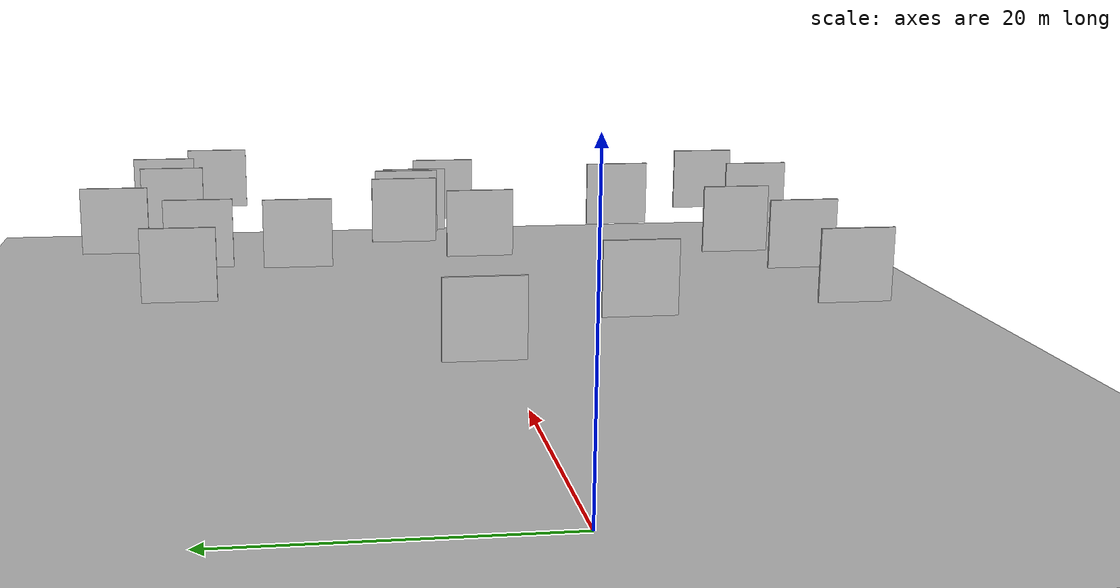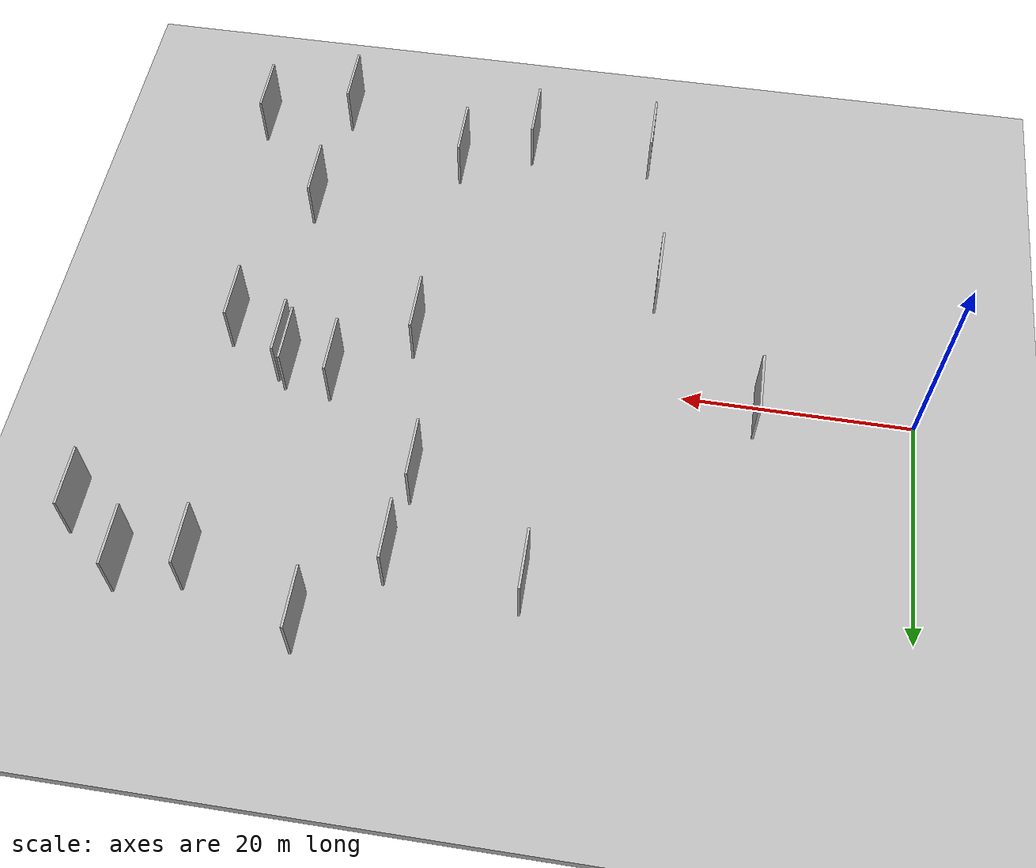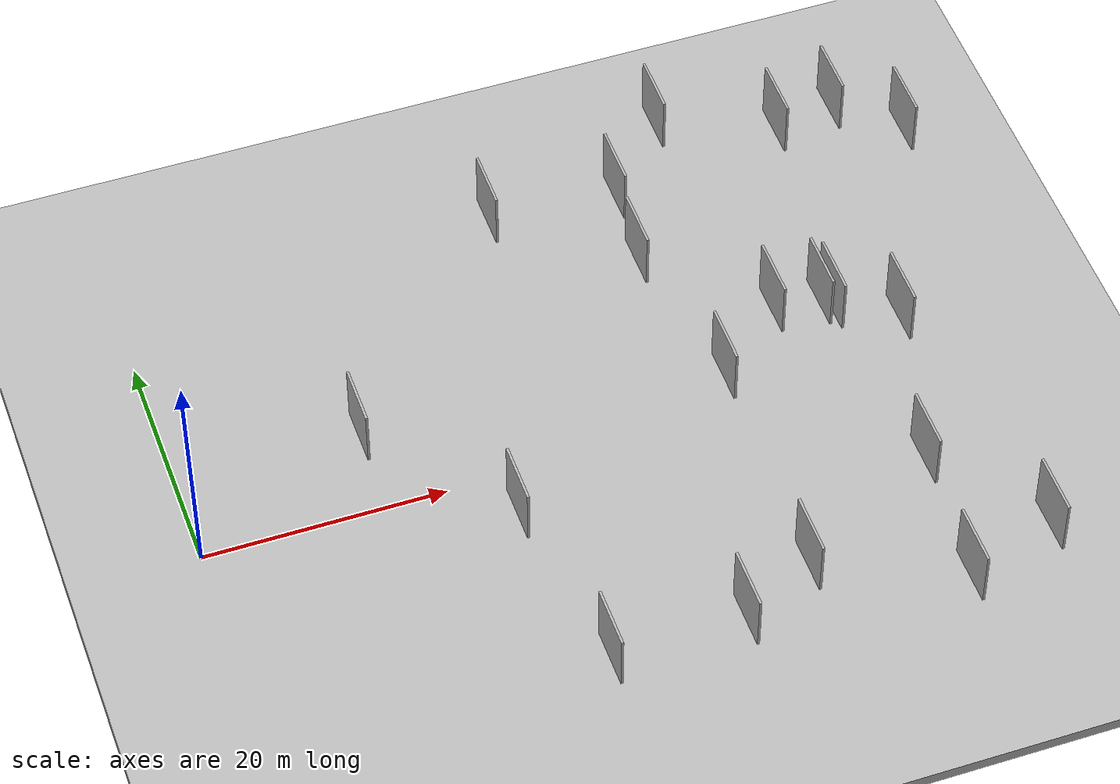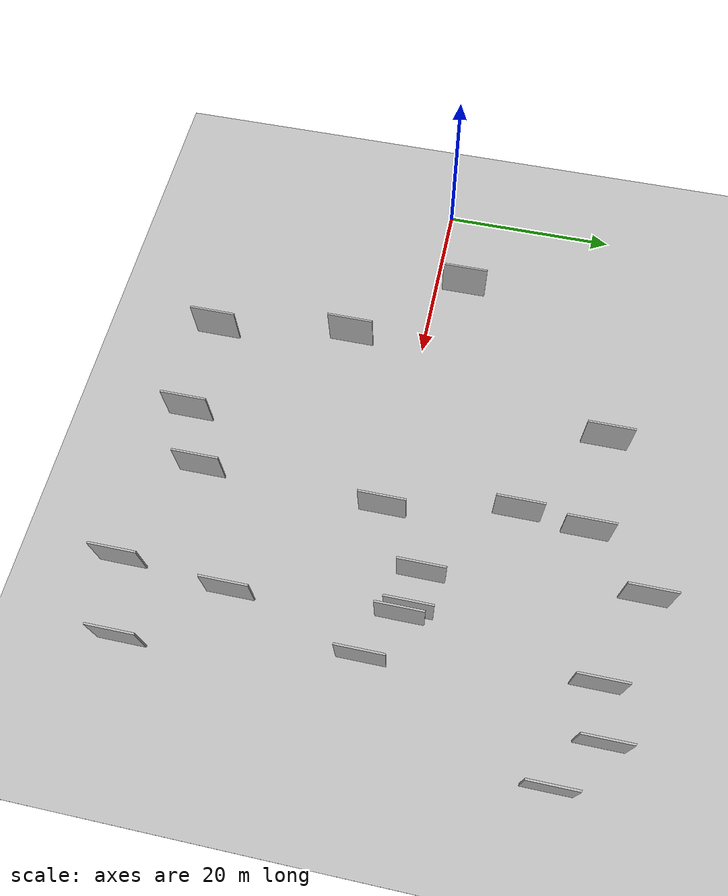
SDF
<?xml version="1.0" encoding="utf-8"?>

<sdf version="1.6">

   <world name="default">

      <gui fullscreen="0">

         <camera name="user_camera">

            <pose>-15 0 4.57585 0 0 0</pose>

            <view_controller>orbit</view_controller>

         </camera>

      </gui>

      <scene>

         <sky>

           <clouds>

             <speed>12</speed>

           </clouds>

         </sky>

         <ambient>0.4 0.4 0.4 1</ambient>

         <background>0.7 0.7 0.7 1</background>

         <shadows>1</shadows>

      </scene>

      <gravity>0 0 -9.8066</gravity>

      <magnetic_field>6e-06 2.3e-05 -4.2e-05</magnetic_field>

      <physics default="0" name="default_physics" type="ode">

         <ode>

            <solver>

               <type>quick</type>

               <iters>10</iters>

               <sor>1.0</sor>

               <use_dynamic_moi_rescaling>0</use_dynamic_moi_rescaling>

            </solver>

            <constraints>

               <cfm>0</cfm>

               <erp>0.2</erp>

               <contact_max_correcting_vel>100</contact_max_correcting_vel>

               <contact_surface_layer>0.001</contact_surface_layer>

            </constraints>

         </ode>

         <max_step_size>0.004</max_step_size>

         <real_time_factor>1</real_time_factor>

         <real_time_update_rate>250</real_time_update_rate>

      </physics>

      <light name="sun" type="directional">

         <cast_shadows>1</cast_shadows>

         <pose>0 0 10 0 0 0</pose>

         <diffuse>0.8 0.8 0.8 1</diffuse>

         <specular>0.2 0.2 0.2 1</specular>

         <attenuation>

            <range>1000</range>

            <constant>0.9</constant>

            <linear>0.01</linear>

            <quadratic>0.001</quadratic>

         </attenuation>

         <direction>-0.5 0.1 -0.9</direction>

      </light>

      <include>

         <name>ground_plane_1</name>

         <uri>model://HANNAS_ground_plane</uri>

         <pose>0 0 0  0 0 0</pose>

      </include>

      <include>

         <name>ground_plane_2</name>

         <uri>model://HANNAS_ground_plane</uri>

         <pose>100 0 0  0 0 0</pose>

      </include>

      <model name="HANNAS_wall_1">

         <static>1</static>

         <pose frame="">14.1617 3.6028 5.0 0.000000 0.000000 1.570796</pose>

         <link name="link">

            <pose frame="">0 0 2.50 0 0 0</pose>

            <collision name="collision">

               <geometry>

                  <box>

                     <size>5.00 0.2 5.00</size>

                  </box>

               </geometry>

               <max_contacts>10</max_contacts>

               <surface>

                  <contact>

                     <ode/>

                  </contact>

                  <bounce/>

                  <friction>

                     <torsional>

                        <ode/>

                     </torsional>

                     <ode/>

                  </friction>

               </surface>

            </collision>

            <visual name="visual">

               <cast_shadows>0</cast_shadows>

               <geometry>

                  <box>

                     <size>5.00 0.2 5.00</size>

                  </box>

               </geometry>

               <material>

                  <script>

                     <uri>model://HANNAS_wall/materials/scripts</uri>

                     <uri>model://HANNAS_wall/materials/textures</uri>

                     <name>vrc/HANNAS_wall</name>

                  </script>

               </material>

            </visual>

            <self_collide>0</self_collide>

            <enable_wind>0</enable_wind>

            <kinematic>0</kinematic>

         </link>

      </model>

      <model name="HANNAS_wall_2">

         <static>1</static>

         <pose frame="">41.3663 20.9737 5.0 0.000000 0.000000 1.570796</pose>

         <link name="link">

            <pose frame="">0 0 2.50 0 0 0</pose>

            <collision name="collision">

               <geometry>

                  <box>

                     <size>5.00 0.2 5.00</size>

                  </box>

               </geometry>

               <max_contacts>10</max_contacts>

               <surface>

                  <contact>

                     <ode/>

                  </contact>

                  <bounce/>

                  <friction>

                     <torsional>

                        <ode/>

                     </torsional>

                     <ode/>

                  </friction>

               </surface>

            </collision>

            <visual name="visual">

               <cast_shadows>0</cast_shadows>

               <geometry>

                  <box>

                     <size>5.00 0.2 5.00</size>

                  </box>

               </geometry>

               <material>

                  <script>

                     <uri>model://HANNAS_wall/materials/scripts</uri>

                     <uri>model://HANNAS_wall/materials/textures</uri>

                     <name>vrc/HANNAS_wall</name>

                  </script>

               </material>

            </visual>

            <self_collide>0</self_collide>

            <enable_wind>0</enable_wind>

            <kinematic>0</kinematic>

         </link>

      </model>

      <model name="HANNAS_wall_3">

         <static>1</static>

         <pose frame="">43.0630 0.0927 5.0 0.000000 0.000000 1.570796</pose>

         <link name="link">

            <pose frame="">0 0 2.50 0 0 0</pose>

            <collision name="collision">

               <geometry>

                  <box>

                     <size>5.00 0.2 5.00</size>

                  </box>

               </geometry>

               <max_contacts>10</max_contacts>

               <surface>

                  <contact>

                     <ode/>

                  </contact>

                  <bounce/>

                  <friction>

                     <torsional>

                        <ode/>

                     </torsional>

                     <ode/>

                  </friction>

               </surface>

            </collision>

            <visual name="visual">

               <cast_shadows>0</cast_shadows>

               <geometry>

                  <box>

                     <size>5.00 0.2 5.00</size>

                  </box>

               </geometry>

               <material>

                  <script>

                     <uri>model://HANNAS_wall/materials/scripts</uri>

                     <uri>model://HANNAS_wall/materials/textures</uri>

                     <name>vrc/HANNAS_wall</name>

                  </script>

               </material>

            </visual>

            <self_collide>0</self_collide>

            <enable_wind>0</enable_wind>

            <kinematic>0</kinematic>

         </link>

      </model>

      <model name="HANNAS_wall_4">

         <static>1</static>

         <pose frame="">23.3538 -7.6842 5.0 0.000000 0.000000 1.570796</pose>

         <link name="link">

            <pose frame="">0 0 2.50 0 0 0</pose>

            <collision name="collision">

               <geometry>

                  <box>

                     <size>5.00 0.2 5.00</size>

                  </box>

               </geometry>

               <max_contacts>10</max_contacts>

               <surface>

                  <contact>

                     <ode/>

                  </contact>

                  <bounce/>

                  <friction>

                     <torsional>

                        <ode/>

                     </torsional>

                     <ode/>

                  </friction>

               </surface>

            </collision>

            <visual name="visual">

               <cast_shadows>0</cast_shadows>

               <geometry>

                  <box>

                     <size>5.00 0.2 5.00</size>

                  </box>

               </geometry>

               <material>

                  <script>

                     <uri>model://HANNAS_wall/materials/scripts</uri>

                     <uri>model://HANNAS_wall/materials/textures</uri>

                     <name>vrc/HANNAS_wall</name>

                  </script>

               </material>

            </visual>

            <self_collide>0</self_collide>

            <enable_wind>0</enable_wind>

            <kinematic>0</kinematic>

         </link>

      </model>

      <model name="HANNAS_wall_5">

         <static>1</static>

         <pose frame="">58.4165 1.2532 5.0 0.000000 0.000000 1.570796</pose>

         <link name="link">

            <pose frame="">0 0 2.50 0 0 0</pose>

            <collision name="collision">

               <geometry>

                  <box>

                     <size>5.00 0.2 5.00</size>

                  </box>

               </geometry>

               <max_contacts>10</max_contacts>

               <surface>

                  <contact>

                     <ode/>

                  </contact>

                  <bounce/>

                  <friction>

                     <torsional>

                        <ode/>

                     </torsional>

                     <ode/>

                  </friction>

               </surface>

            </collision>

            <visual name="visual">

               <cast_shadows>0</cast_shadows>

               <geometry>

                  <box>

                     <size>5.00 0.2 5.00</size>

                  </box>

               </geometry>

               <material>

                  <script>

                     <uri>model://HANNAS_wall/materials/scripts</uri>

                     <uri>model://HANNAS_wall/materials/textures</uri>

                     <name>vrc/HANNAS_wall</name>

                  </script>

               </material>

            </visual>

            <self_collide>0</self_collide>

            <enable_wind>0</enable_wind>

            <kinematic>0</kinematic>

         </link>

      </model>

      <model name="HANNAS_wall_6">

         <static>1</static>

         <pose frame="">40.6929 13.7889 5.0 0.000000 0.000000 1.570796</pose>

         <link name="link">

            <pose frame="">0 0 2.50 0 0 0</pose>

            <collision name="collision">

               <geometry>

                  <box>

                     <size>5.00 0.2 5.00</size>

                  </box>

               </geometry>

               <max_contacts>10</max_contacts>

               <surface>

                  <contact>

                     <ode/>

                  </contact>

                  <bounce/>

                  <friction>

                     <torsional>

                        <ode/>

                     </torsional>

                     <ode/>

                  </friction>

               </surface>

            </collision>

            <visual name="visual">

               <cast_shadows>0</cast_shadows>

               <geometry>

                  <box>

                     <size>5.00 0.2 5.00</size>

                  </box>

               </geometry>

               <material>

                  <script>

                     <uri>model://HANNAS_wall/materials/scripts</uri>

                     <uri>model://HANNAS_wall/materials/textures</uri>

                     <name>vrc/HANNAS_wall</name>

                  </script>

               </material>

            </visual>

            <self_collide>0</self_collide>

            <enable_wind>0</enable_wind>

            <kinematic>0</kinematic>

         </link>

      </model>

      <model name="HANNAS_wall_7">

         <static>1</static>

         <pose frame="">47.1019 27.4755 5.0 0.000000 0.000000 1.570796</pose>

         <link name="link">

            <pose frame="">0 0 2.50 0 0 0</pose>

            <collision name="collision">

               <geometry>

                  <box>

                     <size>5.00 0.2 5.00</size>

                  </box>

               </geometry>

               <max_contacts>10</max_contacts>

               <surface>

                  <contact>

                     <ode/>

                  </contact>

                  <bounce/>

                  <friction>

                     <torsional>

                        <ode/>

                     </torsional>

                     <ode/>

                  </friction>

               </surface>

            </collision>

            <visual name="visual">

               <cast_shadows>0</cast_shadows>

               <geometry>

                  <box>

                     <size>5.00 0.2 5.00</size>

                  </box>

               </geometry>

               <material>

                  <script>

                     <uri>model://HANNAS_wall/materials/scripts</uri>

                     <uri>model://HANNAS_wall/materials/textures</uri>

                     <name>vrc/HANNAS_wall</name>

                  </script>

               </material>

            </visual>

            <self_collide>0</self_collide>

            <enable_wind>0</enable_wind>

            <kinematic>0</kinematic>

         </link>

      </model>

      <model name="HANNAS_wall_8">

         <static>1</static>

         <pose frame="">49.0996 5.3220 5.0 0.000000 0.000000 1.570796</pose>

         <link name="link">

            <pose frame="">0 0 2.50 0 0 0</pose>

            <collision name="collision">

               <geometry>

                  <box>

                     <size>5.00 0.2 5.00</size>

                  </box>

               </geometry>

               <max_contacts>10</max_contacts>

               <surface>

                  <contact>

                     <ode/>

                  </contact>

                  <bounce/>

                  <friction>

                     <torsional>

                        <ode/>

                     </torsional>

                     <ode/>

                  </friction>

               </surface>

            </collision>

            <visual name="visual">

               <cast_shadows>0</cast_shadows>

               <geometry>

                  <box>

                     <size>5.00 0.2 5.00</size>

                  </box>

               </geometry>

               <material>

                  <script>

                     <uri>model://HANNAS_wall/materials/scripts</uri>

                     <uri>model://HANNAS_wall/materials/textures</uri>

                     <name>vrc/HANNAS_wall</name>

                  </script>

               </material>

            </visual>

            <self_collide>0</self_collide>

            <enable_wind>0</enable_wind>

            <kinematic>0</kinematic>

         </link>

      </model>

      <model name="HANNAS_wall_9">

         <static>1</static>

         <pose frame="">53.7305 4.0978 5.0 0.000000 0.000000 1.570796</pose>

         <link name="link">

            <pose frame="">0 0 2.50 0 0 0</pose>

            <collision name="collision">

               <geometry>

                  <box>

                     <size>5.00 0.2 5.00</size>

                  </box>

               </geometry>

               <max_contacts>10</max_contacts>

               <surface>

                  <contact>

                     <ode/>

                  </contact>

                  <bounce/>

                  <friction>

                     <torsional>

                        <ode/>

                     </torsional>

                     <ode/>

                  </friction>

               </surface>

            </collision>

            <visual name="visual">

               <cast_shadows>0</cast_shadows>

               <geometry>

                  <box>

                     <size>5.00 0.2 5.00</size>

                  </box>

               </geometry>

               <material>

                  <script>

                     <uri>model://HANNAS_wall/materials/scripts</uri>

                     <uri>model://HANNAS_wall/materials/textures</uri>

                     <name>vrc/HANNAS_wall</name>

                  </script>

               </material>

            </visual>

            <self_collide>0</self_collide>

            <enable_wind>0</enable_wind>

            <kinematic>0</kinematic>

         </link>

      </model>

      <model name="HANNAS_wall_10">

         <static>1</static>

         <pose frame="">56.4729 23.7045 5.0 0.000000 0.000000 1.570796</pose>

         <link name="link">

            <pose frame="">0 0 2.50 0 0 0</pose>

            <collision name="collision">

               <geometry>

                  <box>

                     <size>5.00 0.2 5.00</size>

                  </box>

               </geometry>

               <max_contacts>10</max_contacts>

               <surface>

                  <contact>

                     <ode/>

                  </contact>

                  <bounce/>

                  <friction>

                     <torsional>

                        <ode/>

                     </torsional>

                     <ode/>

                  </friction>

               </surface>

            </collision>

            <visual name="visual">

               <cast_shadows>0</cast_shadows>

               <geometry>

                  <box>

                     <size>5.00 0.2 5.00</size>

                  </box>

               </geometry>

               <material>

                  <script>

                     <uri>model://HANNAS_wall/materials/scripts</uri>

                     <uri>model://HANNAS_wall/materials/textures</uri>

                     <name>vrc/HANNAS_wall</name>

                  </script>

               </material>

            </visual>

            <self_collide>0</self_collide>

            <enable_wind>0</enable_wind>

            <kinematic>0</kinematic>

         </link>

      </model>

      <model name="HANNAS_wall_11">

         <static>1</static>

         <pose frame="">54.6732 -12.9113 5.0 0.000000 0.000000 1.570796</pose>

         <link name="link">

            <pose frame="">0 0 2.50 0 0 0</pose>

            <collision name="collision">

               <geometry>

                  <box>

                     <size>5.00 0.2 5.00</size>

                  </box>

               </geometry>

               <max_contacts>10</max_contacts>

               <surface>

                  <contact>

                     <ode/>

                  </contact>

                  <bounce/>

                  <friction>

                     <torsional>

                        <ode/>

                     </torsional>

                     <ode/>

                  </friction>

               </surface>

            </collision>

            <visual name="visual">

               <cast_shadows>0</cast_shadows>

               <geometry>

                  <box>

                     <size>5.00 0.2 5.00</size>

                  </box>

               </geometry>

               <material>

                  <script>

                     <uri>model://HANNAS_wall/materials/scripts</uri>

                     <uri>model://HANNAS_wall/materials/textures</uri>

                     <name>vrc/HANNAS_wall</name>

                  </script>

               </material>

            </visual>

            <self_collide>0</self_collide>

            <enable_wind>0</enable_wind>

            <kinematic>0</kinematic>

         </link>

      </model>

      <model name="HANNAS_wall_12">

         <static>1</static>

         <pose frame="">66.4869 20.3504 5.0 0.000000 0.000000 1.570796</pose>

         <link name="link">

            <pose frame="">0 0 2.50 0 0 0</pose>

            <collision name="collision">

               <geometry>

                  <box>

                     <size>5.00 0.2 5.00</size>

                  </box>

               </geometry>

               <max_contacts>10</max_contacts>

               <surface>

                  <contact>

                     <ode/>

                  </contact>

                  <bounce/>

                  <friction>

                     <torsional>

                        <ode/>

                     </torsional>

                     <ode/>

                  </friction>

               </surface>

            </collision>

            <visual name="visual">

               <cast_shadows>0</cast_shadows>

               <geometry>

                  <box>

                     <size>5.00 0.2 5.00</size>

                  </box>

               </geometry>

               <material>

                  <script>

                     <uri>model://HANNAS_wall/materials/scripts</uri>

                     <uri>model://HANNAS_wall/materials/textures</uri>

                     <name>vrc/HANNAS_wall</name>

                  </script>

               </material>

            </visual>

            <self_collide>0</self_collide>

            <enable_wind>0</enable_wind>

            <kinematic>0</kinematic>

         </link>

      </model>

      <model name="HANNAS_wall_13">

         <static>1</static>

         <pose frame="">42.4790 -19.5198 5.0 0.000000 0.000000 1.570796</pose>

         <link name="link">

            <pose frame="">0 0 2.50 0 0 0</pose>

            <collision name="collision">

               <geometry>

                  <box>

                     <size>5.00 0.2 5.00</size>

                  </box>

               </geometry>

               <max_contacts>10</max_contacts>

               <surface>

                  <contact>

                     <ode/>

                  </contact>

                  <bounce/>

                  <friction>

                     <torsional>

                        <ode/>

                     </torsional>

                     <ode/>

                  </friction>

               </surface>

            </collision>

            <visual name="visual">

               <cast_shadows>0</cast_shadows>

               <geometry>

                  <box>

                     <size>5.00 0.2 5.00</size>

                  </box>

               </geometry>

               <material>

                  <script>

                     <uri>model://HANNAS_wall/materials/scripts</uri>

                     <uri>model://HANNAS_wall/materials/textures</uri>

                     <name>vrc/HANNAS_wall</name>

                  </script>

               </material>

            </visual>

            <self_collide>0</self_collide>

            <enable_wind>0</enable_wind>

            <kinematic>0</kinematic>

         </link>

      </model>

      <model name="HANNAS_wall_14">

         <static>1</static>

         <pose frame="">52.9929 4.8207 5.0 0.000000 0.000000 1.570796</pose>

         <link name="link">

            <pose frame="">0 0 2.50 0 0 0</pose>

            <collision name="collision">

               <geometry>

                  <box>

                     <size>5.00 0.2 5.00</size>

                  </box>

               </geometry>

               <max_contacts>10</max_contacts>

               <surface>

                  <contact>

                     <ode/>

                  </contact>

                  <bounce/>

                  <friction>

                     <torsional>

                        <ode/>

                     </torsional>

                     <ode/>

                  </friction>

               </surface>

            </collision>

            <visual name="visual">

               <cast_shadows>0</cast_shadows>

               <geometry>

                  <box>

                     <size>5.00 0.2 5.00</size>

                  </box>

               </geometry>

               <material>

                  <script>

                     <uri>model://HANNAS_wall/materials/scripts</uri>

                     <uri>model://HANNAS_wall/materials/textures</uri>

                     <name>vrc/HANNAS_wall</name>

                  </script>

               </material>

            </visual>

            <self_collide>0</self_collide>

            <enable_wind>0</enable_wind>

            <kinematic>0</kinematic>

         </link>

      </model>

      <model name="HANNAS_wall_15">

         <static>1</static>

         <pose frame="">53.6625 -24.4670 5.0 0.000000 0.000000 1.570796</pose>

         <link name="link">

            <pose frame="">0 0 2.50 0 0 0</pose>

            <collision name="collision">

               <geometry>

                  <box>

                     <size>5.00 0.2 5.00</size>

                  </box>

               </geometry>

               <max_contacts>10</max_contacts>

               <surface>

                  <contact>

                     <ode/>

                  </contact>

                  <bounce/>

                  <friction>

                     <torsional>

                        <ode/>

                     </torsional>

                     <ode/>

                  </friction>

               </surface>

            </collision>

            <visual name="visual">

               <cast_shadows>0</cast_shadows>

               <geometry>

                  <box>

                     <size>5.00 0.2 5.00</size>

                  </box>

               </geometry>

               <material>

                  <script>

                     <uri>model://HANNAS_wall/materials/scripts</uri>

                     <uri>model://HANNAS_wall/materials/textures</uri>

                     <name>vrc/HANNAS_wall</name>

                  </script>

               </material>

            </visual>

            <self_collide>0</self_collide>

            <enable_wind>0</enable_wind>

            <kinematic>0</kinematic>

         </link>

      </model>

      <model name="HANNAS_wall_16">

         <static>1</static>

         <pose frame="">30.7013 21.8368 5.0 0.000000 0.000000 1.570796</pose>

         <link name="link">

            <pose frame="">0 0 2.50 0 0 0</pose>

            <collision name="collision">

               <geometry>

                  <box>

                     <size>5.00 0.2 5.00</size>

                  </box>

               </geometry>

               <max_contacts>10</max_contacts>

               <surface>

                  <contact>

                     <ode/>

                  </contact>

                  <bounce/>

                  <friction>

                     <torsional>

                        <ode/>

                     </torsional>

                     <ode/>

                  </friction>

               </surface>

            </collision>

            <visual name="visual">

               <cast_shadows>0</cast_shadows>

               <geometry>

                  <box>

                     <size>5.00 0.2 5.00</size>

                  </box>

               </geometry>

               <material>

                  <script>

                     <uri>model://HANNAS_wall/materials/scripts</uri>

                     <uri>model://HANNAS_wall/materials/textures</uri>

                     <name>vrc/HANNAS_wall</name>

                  </script>

               </material>

            </visual>

            <self_collide>0</self_collide>

            <enable_wind>0</enable_wind>

            <kinematic>0</kinematic>

         </link>

      </model>

      <model name="HANNAS_wall_17">

         <static>1</static>

         <pose frame="">61.7011 24.6337 5.0 0.000000 0.000000 1.570796</pose>

         <link name="link">

            <pose frame="">0 0 2.50 0 0 0</pose>

            <collision name="collision">

               <geometry>

                  <box>

                     <size>5.00 0.2 5.00</size>

                  </box>

               </geometry>

               <max_contacts>10</max_contacts>

               <surface>

                  <contact>

                     <ode/>

                  </contact>

                  <bounce/>

                  <friction>

                     <torsional>

                        <ode/>

                     </torsional>

                     <ode/>

                  </friction>

               </surface>

            </collision>

            <visual name="visual">

               <cast_shadows>0</cast_shadows>

               <geometry>

                  <box>

                     <size>5.00 0.2 5.00</size>

                  </box>

               </geometry>

               <material>

                  <script>

                     <uri>model://HANNAS_wall/materials/scripts</uri>

                     <uri>model://HANNAS_wall/materials/textures</uri>

                     <name>vrc/HANNAS_wall</name>

                  </script>

               </material>

            </visual>

            <self_collide>0</self_collide>

            <enable_wind>0</enable_wind>

            <kinematic>0</kinematic>

         </link>

      </model>

      <model name="HANNAS_wall_18">

         <static>1</static>

         <pose frame="">25.4809 -22.7627 5.0 0.000000 0.000000 1.570796</pose>

         <link name="link">

            <pose frame="">0 0 2.50 0 0 0</pose>

            <collision name="collision">

               <geometry>

                  <box>

                     <size>5.00 0.2 5.00</size>

                  </box>

               </geometry>

               <max_contacts>10</max_contacts>

               <surface>

                  <contact>

                     <ode/>

                  </contact>

                  <bounce/>

                  <friction>

                     <torsional>

                        <ode/>

                     </torsional>

                     <ode/>

                  </friction>

               </surface>

            </collision>

            <visual name="visual">

               <cast_shadows>0</cast_shadows>

               <geometry>

                  <box>

                     <size>5.00 0.2 5.00</size>

                  </box>

               </geometry>

               <material>

                  <script>

                     <uri>model://HANNAS_wall/materials/scripts</uri>

                     <uri>model://HANNAS_wall/materials/textures</uri>

                     <name>vrc/HANNAS_wall</name>

                  </script>

               </material>

            </visual>

            <self_collide>0</self_collide>

            <enable_wind>0</enable_wind>

            <kinematic>0</kinematic>

         </link>

      </model>

      <model name="HANNAS_wall_19">

         <static>1</static>

         <pose frame="">36.2504 -22.7262 5.0 0.000000 0.000000 1.570796</pose>

         <link name="link">

            <pose frame="">0 0 2.50 0 0 0</pose>

            <collision name="collision">

               <geometry>

                  <box>

                     <size>5.00 0.2 5.00</size>

                  </box>

               </geometry>

               <max_contacts>10</max_contacts>

               <surface>

                  <contact>

                     <ode/>

                  </contact>

                  <bounce/>

                  <friction>

                     <torsional>

                        <ode/>

                     </torsional>

                     <ode/>

                  </friction>

               </surface>

            </collision>

            <visual name="visual">

               <cast_shadows>0</cast_shadows>

               <geometry>

                  <box>

                     <size>5.00 0.2 5.00</size>

                  </box>

               </geometry>

               <material>

                  <script>

                     <uri>model://HANNAS_wall/materials/scripts</uri>

                     <uri>model://HANNAS_wall/materials/textures</uri>

                     <name>vrc/HANNAS_wall</name>

                  </script>

               </material>

            </visual>

            <self_collide>0</self_collide>

            <enable_wind>0</enable_wind>

            <kinematic>0</kinematic>

         </link>

      </model>

      <model name="HANNAS_wall_20">

         <static>1</static>

         <pose frame="">61.2708 -22.0055 5.0 0.000000 0.000000 1.570796</pose>

         <link name="link">

            <pose frame="">0 0 2.50 0 0 0</pose>

            <collision name="collision">

               <geometry>

                  <box>

                     <size>5.00 0.2 5.00</size>

                  </box>

               </geometry>

               <max_contacts>10</max_contacts>

               <surface>

                  <contact>

                     <ode/>

                  </contact>

                  <bounce/>

                  <friction>

                     <torsional>

                        <ode/>

                     </torsional>

                     <ode/>

                  </friction>

               </surface>

            </collision>

            <visual name="visual">

               <cast_shadows>0</cast_shadows>

               <geometry>

                  <box>

                     <size>5.00 0.2 5.00</size>

                  </box>

               </geometry>

               <material>

                  <script>

                     <uri>model://HANNAS_wall/materials/scripts</uri>

                     <uri>model://HANNAS_wall/materials/textures</uri>

                     <name>vrc/HANNAS_wall</name>

                  </script>

               </material>

            </visual>

            <self_collide>0</self_collide>

            <enable_wind>0</enable_wind>

            <kinematic>0</kinematic>

         </link>

      </model>

   </world>

</sdf>

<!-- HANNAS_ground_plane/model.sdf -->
<sdf version="1.4">
<model name="HANNAS_ground_plane">
  <static>true</static>
    <link name="link">
      <collision name="collision">
        <geometry>
          <plane>
            <normal>0 0 1</normal>
            <size>1000 1000</size>
          </plane>
        </geometry>
        <surface>
          <friction>
            <ode>
              <mu>100</mu>
              <mu2>50</mu2>
            </ode>
          </friction>
        </surface>
      </collision>
      <visual name="visual">
        <cast_shadows>false</cast_shadows>
        <geometry>
          <plane>
            <normal>0 0 1</normal>
            <size>1000 1000</size>
          </plane>
        </geometry>
        <material>
          <script>
            <uri>model://HANNAS_ground_plane/materials/scripts/HANNAS_ground_plane.material</uri>
	    <uri>model://HANNAS_ground_plane/materials/textures</uri>
            <name>HANNASGroundPlane/Image</name>
          </script>
        </material>
      </visual>
    </link>
  </model>
</sdf>
